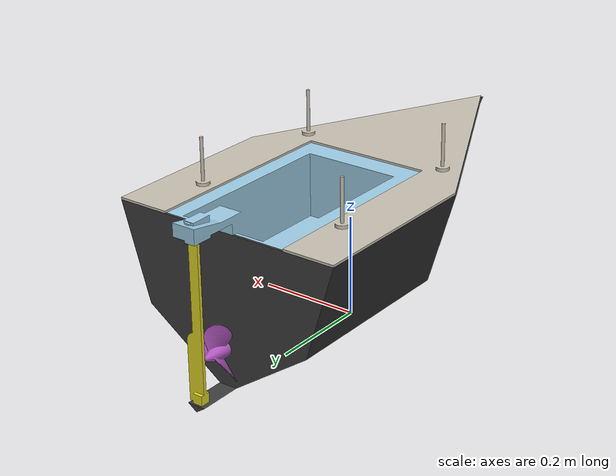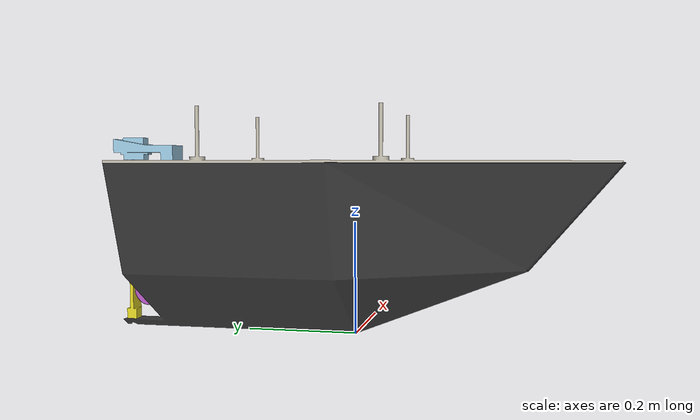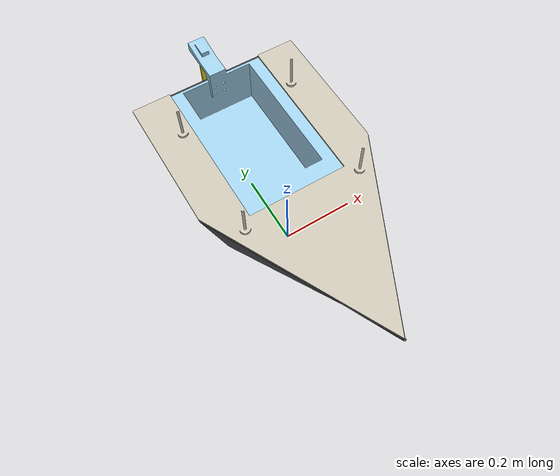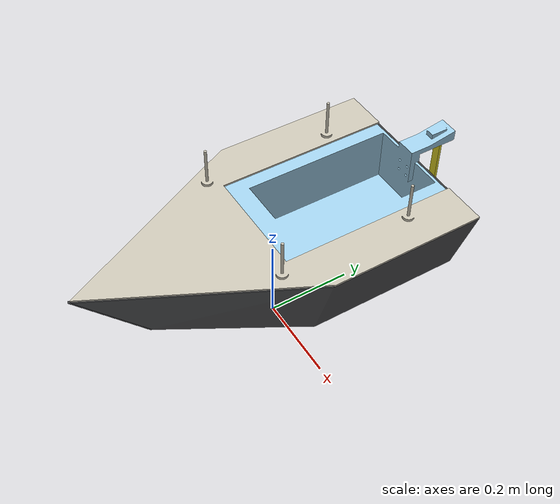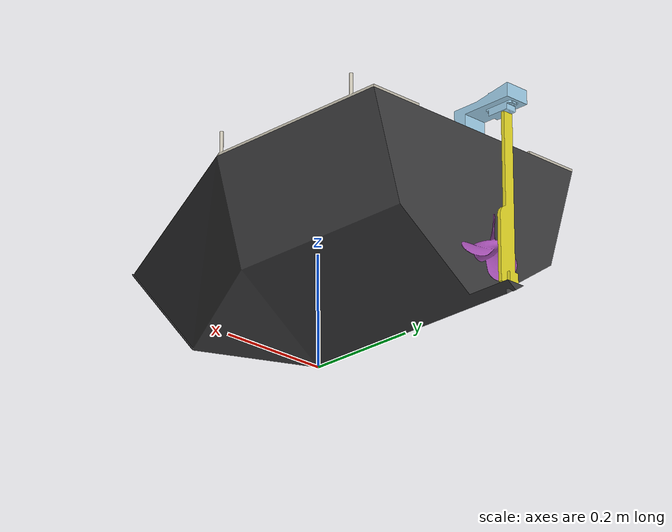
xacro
<?xml version="1.0" encoding="UTF-8"?>
<robot xmlns:xacro="http://wiki.ros.org/xacro" name="craft">

  <!-- Use this if parameters are set from the launch file, otherwise delete -->
  <xacro:arg name="prefix" default="" />

  <xacro:arg name="use_mock_hardware" default="false" />
  <xacro:arg name="mock_sensor_commands" default="false" />
  <xacro:arg name="sim_gazebo_classic" default="false" />
  <xacro:arg name="sim_gazebo" default="false" />
  <xacro:arg name="simulation_controllers" default="" />

  <xacro:include filename="$(find craft_description)/urdf/craft/craft_macro.xacro"/>
  <xacro:include filename="$(find craft_description)/urdf/craft/craft_macro.ros2_control.xacro"/>

  <!-- create link fixed to the "world" -->
  <link name="world" />

  <!-- Load robot's macro with parameters -->
  <!-- set prefix if multiple robots are used -->
  <xacro:craft prefix="$(arg prefix)" parent="world" >
    <origin xyz="0 0 0" rpy="0 0 0" />          <!-- position robot in the world -->
  </xacro:craft>

</robot>

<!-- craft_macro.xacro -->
<robot xmlns:xacro="http://wiki.ros.org/xacro">

  <xacro:include filename="$(find craft_description)/urdf/common.xacro" />

  <xacro:arg name="square_hull" default="false"/>

	<xacro:if value="$(arg square_hull)">
		<xacro:property name="chassis_length" value="0.5"/>
		<xacro:property name="chassis_width" value="0.7"/>
		<xacro:property name="chassis_height" value="0.305"/>
	</xacro:if>

  <xacro:macro name="craft" params="prefix parent *origin">
    <!-- LINKS -->
    <!-- base link -->
    <link name="${prefix}base_link">

    </link>

    <!-- link 1 -->
    <link name="${prefix}hullassm">
      <visual>
        <origin xyz="0 0 0" rpy="0 0 0" />
        <geometry>
          <xacro:if value="$(arg square_hull)">
					  <box size="${chassis_length} ${chassis_width} ${chassis_height}" />
				  </xacro:if>
          <xacro:unless value="$(arg square_hull)">
            <mesh filename="package://craft_description/meshes/craft/visual/hullassm.stl" />
          </xacro:unless>
        </geometry>
        <material name="hullassm_material">
				  <color rgba="0.24291 0.244006 0.250091 1.0" />
			  </material>
      </visual>
      <collision>
        <origin xyz="0 0 0" rpy="0 0 0" />
        <geometry>
          <xacro:if value="$(arg square_hull)">
					  <box size="${chassis_length} ${chassis_width} ${chassis_height}" />
				  </xacro:if>
				  <xacro:unless value="$(arg square_hull)">
            <mesh filename="package://craft_description/meshes/craft/collision/hullassm.stl" />
          </xacro:unless>
        </geometry>
      </collision>
      <xacro:if value="$(arg square_hull)">
        <xacro:box_inertial mass="10" x="${chassis_length}" y="${chassis_width}" z="${chassis_height}">
          <origin xyz="${chassis_length/2} 0 ${chassis_height/2}" rpy="0 0 0" />
        </xacro:box_inertial>
		  </xacro:if>
      <xacro:unless value="$(arg square_hull)">
        <inertial>
          <origin xyz="1.0307e-06 0.188008 0.124094" rpy="0 0 0" />
          <mass value="6.29782" />
          <inertia ixx="0.216502" ixy="-1.02604e-06" ixz="1.28468e-06" iyy="0.0821502"
            iyz="0.0297739" izz="0.237496" />
        </inertial>
      </xacro:unless>
    </link>
    <gazebo reference="hullassm">
      <material>Gazebo/DarkGrey</material>
    </gazebo>

    <!-- link 2 -->
    <link name="${prefix}propeller">
      <visual>
        <origin xyz="0 0 0" rpy="0 0 0" />
        <geometry>
          <mesh filename="package://craft_description/meshes/craft/visual/propeller.stl" />
        </geometry>
        <material name="propeller_material">
				  <color rgba="0.682353 0.333333 0.737255 1.0" />
			  </material>
      </visual>
      <collision>
        <origin xyz="0 0 0" rpy="0 0 0" />
        <geometry>
          <mesh filename="package://craft_description/meshes/craft/collision/propeller.stl"  />
        </geometry>
      </collision>
      <inertial>
        <origin xyz="1.6644e-07 -8.74972e-08 -0.00131544" rpy="0 0 0" />
        <mass value="0.0252682" />
        <inertia ixx="1.02998e-05" ixy="4.84789e-11" ixz="7.4214e-11" iyy="1.02998e-05"
          iyz="5.65357e-11" izz="1.394e-05" />
		  </inertial>
    </link>
    <gazebo reference="propeller">
      <material>Gazebo/Purple</material>
    </gazebo>

    <!-- link 3 -->
    <link name="${prefix}topassm">
      <visual>
        <origin xyz="0 0 0" rpy="0 0 0" />
        <geometry>
          <mesh filename="package://craft_description/meshes/craft/visual/topassm.stl" />
        </geometry>
        <material name="topassm_material">
				  <color rgba="0.780424 0.75747 0.695877 1.0" />
			  </material>
      </visual>
      <collision>
        <origin xyz="0 0 0" rpy="0 0 0" />
        <geometry>
          <mesh filename="package://craft_description/meshes/craft/collision/topassm.stl"  />
        </geometry>
      </collision>
      <inertial>
        <origin xyz="0.2286 -0.367849 0.00346183" rpy="0 0 0" />
        <mass value="0.69925" />
        <inertia ixx="0.028029" ixy="-2.71051e-19" ixz="-2.03288e-20" iyy="0.0137782"
          iyz="-7.66504e-05" izz="0.0417123" />
		  </inertial>
    </link>
    <gazebo reference="topassm">
      <material>Gazebo/White</material>
    </gazebo>

    <!-- link 4 -->
    <link name="${prefix}servocargoassm">
      <visual>
        <origin xyz="0 0 0" rpy="0 0 0" />
        <geometry>
          <mesh filename="package://craft_description/meshes/craft/visual/servocargoassm.stl" />
        </geometry>
        <material name="servocargoassm_material">
				  <color rgba="0.621357 0.806496 0.907144 1.0" />
			  </material>
      </visual>
      <collision>
        <origin xyz="0 0 0" rpy="0 0 0" />
        <geometry>
          <mesh filename="package://craft_description/meshes/craft/collision/servocargoassm.stl"  />
        </geometry>
      </collision>
      <inertial>
        <origin xyz="-2.57314e-10 0.0877782 -0.220495" rpy="0 0 0" />
        <mass value="8.22292" />
        <inertia ixx="0.17107" ixy="-2.11808e-10" ixz="6.43831e-10" iyy="0.215272"
          iyz="0.00150393" izz="0.0855135" />
		  </inertial>
    </link>
    <gazebo reference="servocargoassm">
      <material>Gazebo/Blue </material>
    </gazebo>

    <!-- link 5 -->
    <link name="${prefix}rudder">
      <visual>
        <origin xyz="0 0 0" rpy="0 0 0" />
        <geometry>
          <mesh filename="package://craft_description/meshes/craft/visual/rudder.stl" />
        </geometry>
      </visual>
      <collision>
        <origin xyz="0 0 0" rpy="0 0 0" />
        <geometry>
          <mesh filename="package://craft_description/meshes/craft/collision/rudder.stl" />
        </geometry>
      </collision>
      <inertial>
        <origin xyz="1.73472e-17 0.00323547 -0.179304" rpy="0 0 0" />
        <mass value="0.0651203" />
        <inertia ixx="0.000500832" ixy="3.75168e-21" ixz="6.55605e-23" iyy="0.00049688"
          iyz="1.16286e-05" izz="4.87634e-06" />
		  </inertial>
    </link>
    <gazebo reference="rudder">
      <material>Gazebo/Yellow</material>
    </gazebo>
    <!-- END LINKS -->

    <!-- JOINTS -->
    <!-- base_joint fixes base_link to the environment -->
    <joint name="${prefix}base_joint" type="fixed">
      <xacro:insert_block name="origin" />
      <parent link="${parent}" />
      <child link="${prefix}base_link" />
    </joint>
    <!-- joint 1 -->
    <joint name="${prefix}hull_joint" type="fixed">
      <origin xyz="0 0 0" rpy="0 0 0" />
      <parent link="${prefix}base_link" />
      <child link="${prefix}hullassm" />
    </joint>
    <!-- joint 2 -->
    <joint name="${prefix}propeller_joint" type="continuous">
		  <origin xyz="-2.11292e-18 0.385445 0.0889" rpy="${radians(90)} -0.187437 -3.49069e-15" />
      <parent link="${prefix}hullassm" />
      <child link="${prefix}propeller" />
      <axis xyz="0 0 1" />
    </joint>
    <!-- joint 3 -->
    <joint name="${prefix}hull_cover" type="fixed">
      <origin xyz="-0.2286 0.360045 0.3048" rpy="0 3.08149e-32 -4.62274e-32" />
      <parent link="${prefix}hullassm" />
      <child link="${prefix}topassm" />
      <axis xyz="0 0 1" />
    </joint>
    <!-- joint 4 -->
    <joint name="${prefix}hull_cargo" type="fixed">
		  <origin xyz="-2.77556e-17 0.3556 0.3048" rpy="${radians(-90)} -0 -4.62274e-32" />
      <parent link="${prefix}hullassm" />
      <child link="${prefix}servocargoassm" />
      <axis xyz="0 0 1" />
    </joint>
    <!-- joint 5 -->
    <joint name="${prefix}servo_joint" type="revolute">
      <origin xyz="3.43338e-16 -0.005715 0.074295" rpy="${radians(90)} ${radians(90)} -1.03735e-13" />
      <parent link="${prefix}servocargoassm" />
      <child link="${prefix}rudder" />
      <axis xyz="0 0 1" />
      <!-- effort is torque in nm for rotational joint -->
      <!-- spektrum s605 servo max torque 161 oz-in @ 6v ("9 kg")-->
      <!-- converts 1.1369098451666613 N-m max torque -->
      <!-- velocity is rad/s. for revolute -->
      <!-- Maximum Servo Speed .24 sec/60 degrees @ 6.0V -->
      <!-- 4.36 rad/s max speed -->
      <!-- 90 deg is 1.5708 rad, 180 deg +- 1.57 rad servo range of motion -->
      <limit effort="1.1369" lower="${radians(-90)}" upper="${radians(90)}" velocity="4.36" />
    </joint>
    <!-- END JOINTS -->

  </xacro:macro>
</robot>
